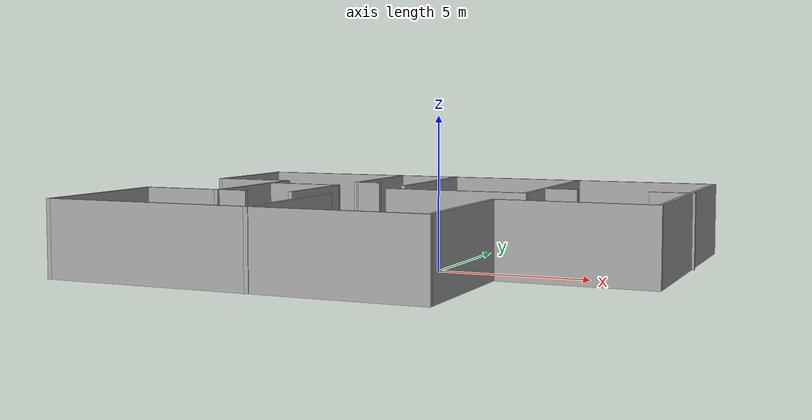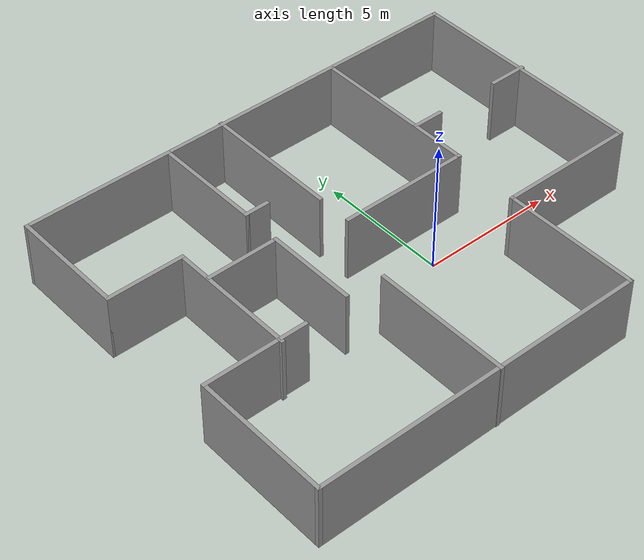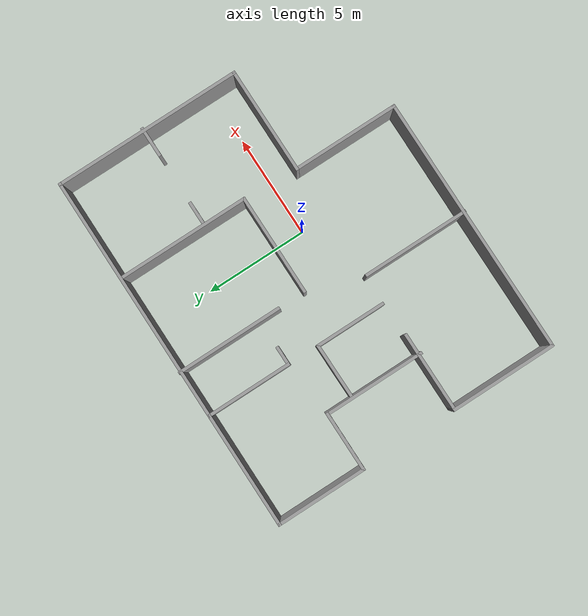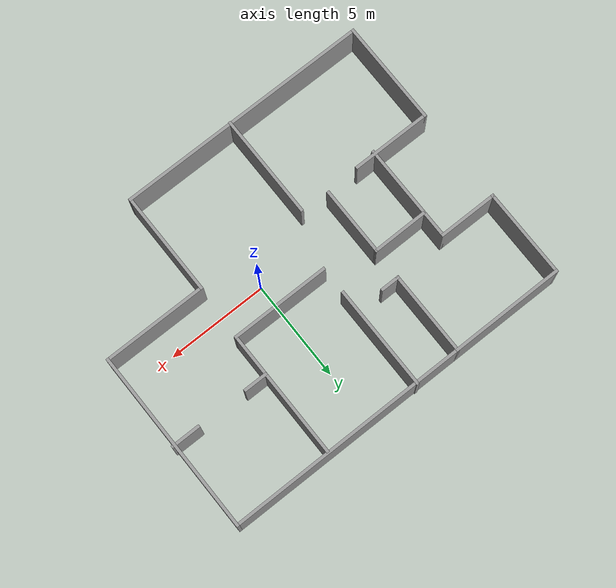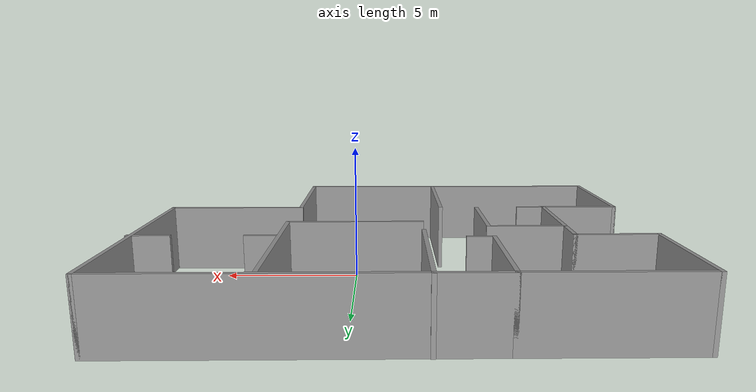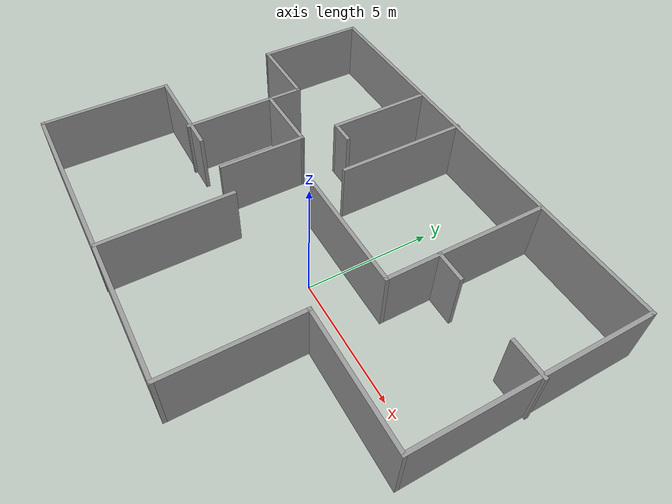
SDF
<?xml version='1.0'?>
<sdf version='1.7'>
  <model name='New_Map.world'>
    <pose>-1.44764 0.806978 0 0 -0 0</pose>
    <link name='Wall_0'>
      <collision name='Wall_0_Collision'>
        <geometry>
          <box>
            <size>5.75 0.15 2.5</size>
          </box>
        </geometry>
        <pose>0 0 1.25 0 -0 0</pose>
      </collision>
      <visual name='Wall_0_Visual'>
        <pose>0 0 1.25 0 -0 0</pose>
        <geometry>
          <box>
            <size>5.75 0.15 2.5</size>
          </box>
        </geometry>
        <material>
          <script>
            <uri>file://media/materials/scripts/gazebo.material</uri>
            <name>Gazebo/Grey</name>
          </script>
          <ambient>1 1 1 1</ambient>
        </material>
        <meta>
          <layer>0</layer>
        </meta>
      </visual>
      <pose>-6.09161 7.09093 0 0 -0 0</pose>
    </link>
    <link name='Wall_1'>
      <collision name='Wall_1_Collision'>
        <geometry>
          <box>
            <size>4.25 0.15 2.5</size>
          </box>
        </geometry>
        <pose>0 0 1.25 0 -0 0</pose>
      </collision>
      <visual name='Wall_1_Visual'>
        <pose>0 0 1.25 0 -0 0</pose>
        <geometry>
          <box>
            <size>4.25 0.15 2.5</size>
          </box>
        </geometry>
        <material>
          <script>
            <uri>file://media/materials/scripts/gazebo.material</uri>
            <name>Gazebo/Grey</name>
          </script>
          <ambient>1 1 1 1</ambient>
        </material>
        <meta>
          <layer>0</layer>
        </meta>
      </visual>
      <pose>-3.29161 5.04093 0 0 -0 -1.5708</pose>
    </link>
    <link name='Wall_10'>
      <collision name='Wall_10_Collision'>
        <geometry>
          <box>
            <size>4 0.15 2.5</size>
          </box>
        </geometry>
        <pose>0 0 1.25 0 -0 0</pose>
      </collision>
      <visual name='Wall_10_Visual'>
        <pose>0 0 1.25 0 -0 0</pose>
        <geometry>
          <box>
            <size>4 0.15 2.5</size>
          </box>
        </geometry>
        <material>
          <script>
            <uri>file://media/materials/scripts/gazebo.material</uri>
            <name>Gazebo/Grey</name>
          </script>
          <ambient>1 1 1 1</ambient>
        </material>
        <meta>
          <layer>0</layer>
        </meta>
      </visual>
      <pose>-6.96661 -2.00907 0 0 -0 0</pose>
    </link>
    <link name='Wall_12'>
      <collision name='Wall_12_Collision'>
        <geometry>
          <box>
            <size>4.5 0.15 2.5</size>
          </box>
        </geometry>
        <pose>0 0 1.25 0 -0 0</pose>
      </collision>
      <visual name='Wall_12_Visual'>
        <pose>0 0 1.25 0 -0 0</pose>
        <geometry>
          <box>
            <size>4.5 0.15 2.5</size>
          </box>
        </geometry>
        <material>
          <script>
            <uri>file://media/materials/scripts/gazebo.material</uri>
            <name>Gazebo/Grey</name>
          </script>
          <ambient>1 1 1 1</ambient>
        </material>
        <meta>
          <layer>0</layer>
        </meta>
      </visual>
      <pose>-8.89161 4.91593 0 0 -0 -1.5708</pose>
    </link>
    <link name='Wall_13'>
      <collision name='Wall_13_Collision'>
        <geometry>
          <box>
            <size>3 0.15 2.5</size>
          </box>
        </geometry>
        <pose>0 0 1.25 0 -0 0</pose>
      </collision>
      <visual name='Wall_13_Visual'>
        <pose>0 0 1.25 0 -0 0</pose>
        <geometry>
          <box>
            <size>3 0.15 2.5</size>
          </box>
        </geometry>
        <material>
          <script>
            <uri>file://media/materials/scripts/gazebo.material</uri>
            <name>Gazebo/Grey</name>
          </script>
          <ambient>1 1 1 1</ambient>
        </material>
        <meta>
          <layer>0</layer>
        </meta>
      </visual>
      <pose>-7.46661 2.74093 0 0 -0 0</pose>
    </link>
    <link name='Wall_14'>
      <collision name='Wall_14_Collision'>
        <geometry>
          <box>
            <size>5 0.15 2.5</size>
          </box>
        </geometry>
        <pose>0 0 1.25 0 -0 0</pose>
      </collision>
      <visual name='Wall_14_Visual'>
        <pose>0 0 1.25 0 -0 0</pose>
        <geometry>
          <box>
            <size>5 0.15 2.5</size>
          </box>
        </geometry>
        <material>
          <script>
            <uri>file://media/materials/scripts/gazebo.material</uri>
            <name>Gazebo/Grey</name>
          </script>
          <ambient>1 1 1 1</ambient>
        </material>
        <meta>
          <layer>0</layer>
        </meta>
      </visual>
      <pose>-6.04161 0.31593 0 0 -0 -1.5708</pose>
    </link>
    <link name='Wall_16'>
      <collision name='Wall_16_Collision'>
        <geometry>
          <box>
            <size>2.82008 0.15 2.5</size>
          </box>
        </geometry>
        <pose>0 0 1.25 0 -0 0</pose>
      </collision>
      <visual name='Wall_16_Visual'>
        <pose>0 0 1.25 0 -0 0</pose>
        <geometry>
          <box>
            <size>2.82008 0.15 2.5</size>
          </box>
        </geometry>
        <material>
          <script>
            <uri>file://media/materials/scripts/gazebo.material</uri>
            <name>Gazebo/Grey</name>
          </script>
          <ambient>1 1 1 1</ambient>
        </material>
        <meta>
          <layer>0</layer>
        </meta>
      </visual>
      <pose>-4.65889 1.45498 0 0 -0 0.00749</pose>
    </link>
    <link name='Wall_17'>
      <collision name='Wall_17_Collision'>
        <geometry>
          <box>
            <size>3.5 0.15 2.5</size>
          </box>
        </geometry>
        <pose>0 0 1.25 0 -0 0</pose>
      </collision>
      <visual name='Wall_17_Visual'>
        <pose>0 0 1.25 0 -0 0</pose>
        <geometry>
          <box>
            <size>3.5 0.15 2.5</size>
          </box>
        </geometry>
        <material>
          <script>
            <uri>file://media/materials/scripts/gazebo.material</uri>
            <name>Gazebo/Grey</name>
          </script>
          <ambient>1 1 1 1</ambient>
        </material>
        <meta>
          <layer>0</layer>
        </meta>
      </visual>
      <pose>-3.32389 -0.22002 0 0 -0 -1.5708</pose>
    </link>
    <link name='Wall_19'>
      <collision name='Wall_19_Collision'>
        <geometry>
          <box>
            <size>5.25 0.15 2.5</size>
          </box>
        </geometry>
        <pose>0 0 1.25 0 -0 0</pose>
      </collision>
      <visual name='Wall_19_Visual'>
        <pose>0 0 1.25 0 -0 0</pose>
        <geometry>
          <box>
            <size>5.25 0.15 2.5</size>
          </box>
        </geometry>
        <material>
          <script>
            <uri>file://media/materials/scripts/gazebo.material</uri>
            <name>Gazebo/Grey</name>
          </script>
          <ambient>1 1 1 1</ambient>
        </material>
        <meta>
          <layer>0</layer>
        </meta>
      </visual>
      <pose>-1.89348 -4.5843 0 0 -0 -1.5708</pose>
    </link>
    <link name='Wall_2'>
      <collision name='Wall_2_Collision'>
        <geometry>
          <box>
            <size>1 0.15 2.5</size>
          </box>
        </geometry>
        <pose>0 0 1.25 0 -0 0</pose>
      </collision>
      <visual name='Wall_2_Visual'>
        <pose>0 0 1.25 0 -0 0</pose>
        <geometry>
          <box>
            <size>1 0.15 2.5</size>
          </box>
        </geometry>
        <material>
          <script>
            <uri>file://media/materials/scripts/gazebo.material</uri>
            <name>Gazebo/Grey</name>
          </script>
          <ambient>1 1 1 1</ambient>
        </material>
        <meta>
          <layer>0</layer>
        </meta>
      </visual>
      <pose>-2.86661 2.99093 0 0 -0 0</pose>
    </link>
    <link name='Wall_21'>
      <collision name='Wall_21_Collision'>
        <geometry>
          <box>
            <size>5.25 0.15 2.5</size>
          </box>
        </geometry>
        <pose>0 0 1.25 0 -0 0</pose>
      </collision>
      <visual name='Wall_21_Visual'>
        <pose>0 0 1.25 0 -0 0</pose>
        <geometry>
          <box>
            <size>5.25 0.15 2.5</size>
          </box>
        </geometry>
        <material>
          <script>
            <uri>file://media/materials/scripts/gazebo.material</uri>
            <name>Gazebo/Grey</name>
          </script>
          <ambient>1 1 1 1</ambient>
        </material>
        <meta>
          <layer>0</layer>
        </meta>
      </visual>
      <pose>-1.00666 4.5843 0 0 -0 -1.5708</pose>
    </link>
    <link name='Wall_23'>
      <collision name='Wall_23_Collision'>
        <geometry>
          <box>
            <size>6.5 0.15 2.5</size>
          </box>
        </geometry>
        <pose>0 0 1.25 0 -0 0</pose>
      </collision>
      <visual name='Wall_23_Visual'>
        <pose>0 0 1.25 0 -0 0</pose>
        <geometry>
          <box>
            <size>6.5 0.15 2.5</size>
          </box>
        </geometry>
        <material>
          <script>
            <uri>file://media/materials/scripts/gazebo.material</uri>
            <name>Gazebo/Grey</name>
          </script>
          <ambient>1 1 1 1</ambient>
        </material>
        <meta>
          <layer>0</layer>
        </meta>
      </visual>
      <pose>3.86082 3.83862 0 0 -0 -1.5708</pose>
    </link>
    <link name='Wall_24'>
      <collision name='Wall_24_Collision'>
        <geometry>
          <box>
            <size>5 0.15 2.5</size>
          </box>
        </geometry>
        <pose>0 0 1.25 0 -0 0</pose>
      </collision>
      <visual name='Wall_24_Visual'>
        <pose>0 0 1.25 0 -0 0</pose>
        <geometry>
          <box>
            <size>5 0.15 2.5</size>
          </box>
        </geometry>
        <material>
          <script>
            <uri>file://media/materials/scripts/gazebo.material</uri>
            <name>Gazebo/Grey</name>
          </script>
          <ambient>1 1 1 1</ambient>
        </material>
        <meta>
          <layer>0</layer>
        </meta>
      </visual>
      <pose>1.43582 0.66362 0 0 -0 3.14159</pose>
    </link>
    <link name='Wall_26'>
      <collision name='Wall_26_Collision'>
        <geometry>
          <box>
            <size>1.25 0.15 2.5</size>
          </box>
        </geometry>
        <pose>0 0 1.25 0 -0 0</pose>
      </collision>
      <visual name='Wall_26_Visual'>
        <pose>0 0 1.25 0 -0 0</pose>
        <geometry>
          <box>
            <size>1.25 0.15 2.5</size>
          </box>
        </geometry>
        <material>
          <script>
            <uri>file://media/materials/scripts/gazebo.material</uri>
            <name>Gazebo/Grey</name>
          </script>
          <ambient>1 1 1 1</ambient>
        </material>
        <meta>
          <layer>0</layer>
        </meta>
      </visual>
      <pose>4.41707 2.74954 0 0 -0 3.14159</pose>
    </link>
    <link name='Wall_28'>
      <collision name='Wall_28_Collision'>
        <geometry>
          <box>
            <size>1.5 0.15 2.5</size>
          </box>
        </geometry>
        <pose>0 0 1.25 0 -0 0</pose>
      </collision>
      <visual name='Wall_28_Visual'>
        <pose>0 0 1.25 0 -0 0</pose>
        <geometry>
          <box>
            <size>1.5 0.15 2.5</size>
          </box>
        </geometry>
        <material>
          <script>
            <uri>file://media/materials/scripts/gazebo.material</uri>
            <name>Gazebo/Grey</name>
          </script>
          <ambient>1 1 1 1</ambient>
        </material>
        <meta>
          <layer>0</layer>
        </meta>
      </visual>
      <pose>8.21661 2.72943 0 0 -0 0</pose>
    </link>
    <link name='Wall_4'>
      <collision name='Wall_4_Collision'>
        <geometry>
          <box>
            <size>12.25 0.15 2.5</size>
          </box>
        </geometry>
        <pose>0 0 1.25 0 -0 0</pose>
      </collision>
      <visual name='Wall_4_Visual'>
        <pose>0 0 1.25 0 -0 0</pose>
        <geometry>
          <box>
            <size>12.25 0.15 2.5</size>
          </box>
        </geometry>
        <material>
          <script>
            <uri>file://media/materials/scripts/gazebo.material</uri>
            <name>Gazebo/Grey</name>
          </script>
          <ambient>1 1 1 1</ambient>
        </material>
        <meta>
          <layer>0</layer>
        </meta>
      </visual>
      <pose>2.75839 7.09093 0 0 -0 0</pose>
    </link>
    <link name='Wall_5'>
      <collision name='Wall_5_Collision'>
        <geometry>
          <box>
            <size>9.25 0.15 2.5</size>
          </box>
        </geometry>
        <pose>0 0 1.25 0 -0 0</pose>
      </collision>
      <visual name='Wall_5_Visual'>
        <pose>0 0 1.25 0 -0 0</pose>
        <geometry>
          <box>
            <size>9.25 0.15 2.5</size>
          </box>
        </geometry>
        <material>
          <script>
            <uri>file://media/materials/scripts/gazebo.material</uri>
            <name>Gazebo/Grey</name>
          </script>
          <ambient>1 1 1 1</ambient>
        </material>
        <meta>
          <layer>0</layer>
        </meta>
      </visual>
      <pose>8.80839 2.54093 0 0 -0 -1.5708</pose>
    </link>
    <link name='Wall_6'>
      <collision name='Wall_6_Collision'>
        <geometry>
          <box>
            <size>5.25 0.15 2.5</size>
          </box>
        </geometry>
        <pose>0 0 1.25 0 -0 0</pose>
      </collision>
      <visual name='Wall_6_Visual'>
        <pose>0 0 1.25 0 -0 0</pose>
        <geometry>
          <box>
            <size>5.25 0.15 2.5</size>
          </box>
        </geometry>
        <material>
          <script>
            <uri>file://media/materials/scripts/gazebo.material</uri>
            <name>Gazebo/Grey</name>
          </script>
          <ambient>1 1 1 1</ambient>
        </material>
        <meta>
          <layer>0</layer>
        </meta>
      </visual>
      <pose>6.25839 -2.00907 0 0 -0 3.14159</pose>
    </link>
    <link name='Wall_7'>
      <collision name='Wall_7_Collision'>
        <geometry>
          <box>
            <size>5.25 0.15 2.5</size>
          </box>
        </geometry>
        <pose>0 0 1.25 0 -0 0</pose>
      </collision>
      <visual name='Wall_7_Visual'>
        <pose>0 0 1.25 0 -0 0</pose>
        <geometry>
          <box>
            <size>5.25 0.15 2.5</size>
          </box>
        </geometry>
        <material>
          <script>
            <uri>file://media/materials/scripts/gazebo.material</uri>
            <name>Gazebo/Grey</name>
          </script>
          <ambient>1 1 1 1</ambient>
        </material>
        <meta>
          <layer>0</layer>
        </meta>
      </visual>
      <pose>3.70839 -4.55907 0 0 -0 -1.5708</pose>
    </link>
    <link name='Wall_8'>
      <collision name='Wall_8_Collision'>
        <geometry>
          <box>
            <size>12.75 0.15 2.5</size>
          </box>
        </geometry>
        <pose>0 0 1.25 0 -0 0</pose>
      </collision>
      <visual name='Wall_8_Visual'>
        <pose>0 0 1.25 0 -0 0</pose>
        <geometry>
          <box>
            <size>12.75 0.15 2.5</size>
          </box>
        </geometry>
        <material>
          <script>
            <uri>file://media/materials/scripts/gazebo.material</uri>
            <name>Gazebo/Grey</name>
          </script>
          <ambient>1 1 1 1</ambient>
        </material>
        <meta>
          <layer>0</layer>
        </meta>
      </visual>
      <pose>-2.59161 -7.10907 0 0 -0 3.14159</pose>
    </link>
    <link name='Wall_9'>
      <collision name='Wall_9_Collision'>
        <geometry>
          <box>
            <size>5.25 0.15 2.5</size>
          </box>
        </geometry>
        <pose>0 0 1.25 0 -0 0</pose>
      </collision>
      <visual name='Wall_9_Visual'>
        <pose>0 0 1.25 0 -0 0</pose>
        <geometry>
          <box>
            <size>5.25 0.15 2.5</size>
          </box>
        </geometry>
        <material>
          <script>
            <uri>file://media/materials/scripts/gazebo.material</uri>
            <name>Gazebo/Grey</name>
          </script>
          <ambient>1 1 1 1</ambient>
        </material>
        <meta>
          <layer>0</layer>
        </meta>
      </visual>
      <pose>-8.89161 -4.55907 0 0 -0 1.5708</pose>
    </link>
    <static>1</static>
  </model>
</sdf>
